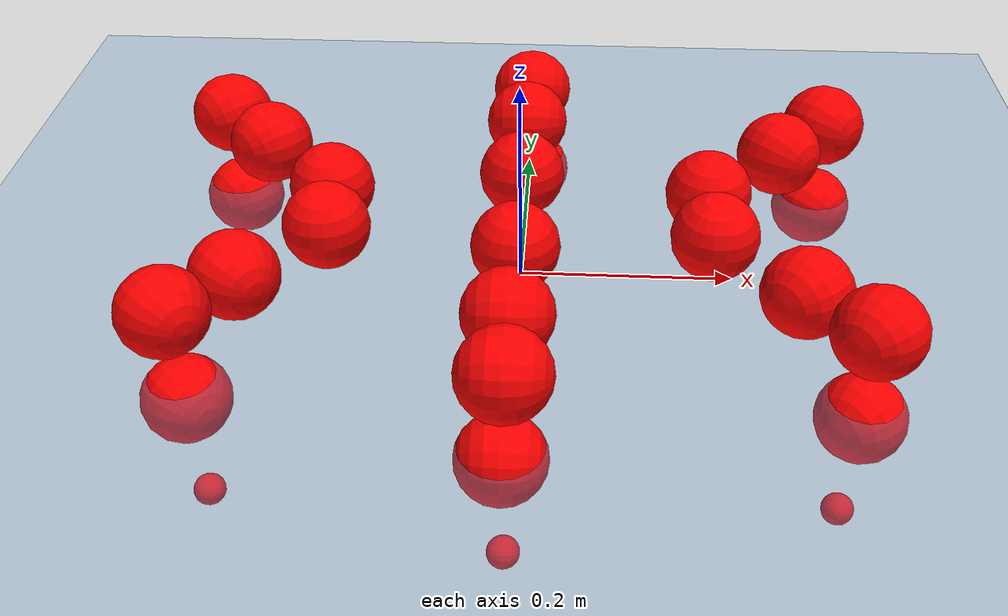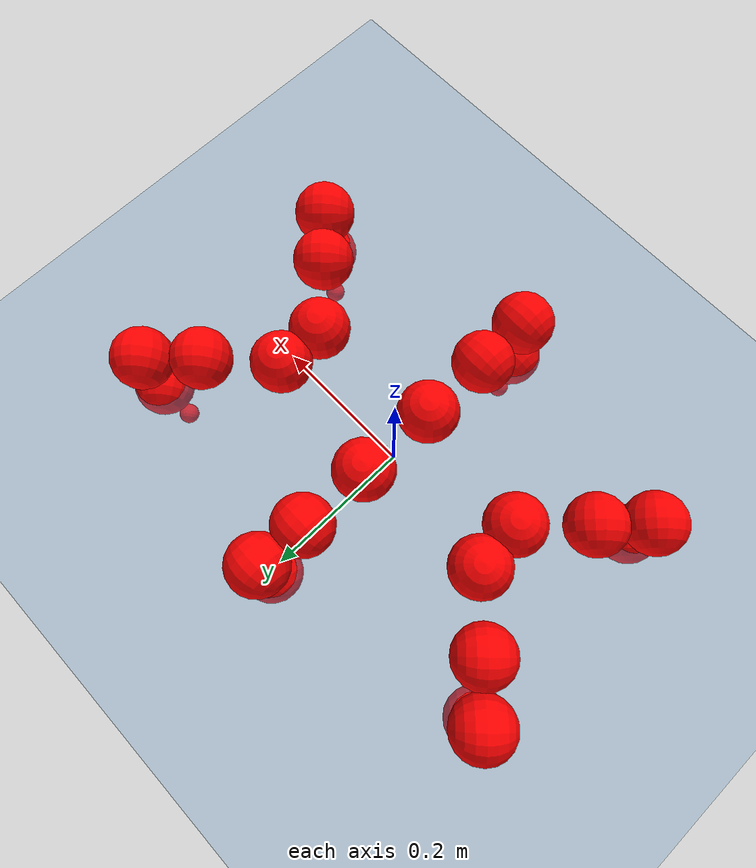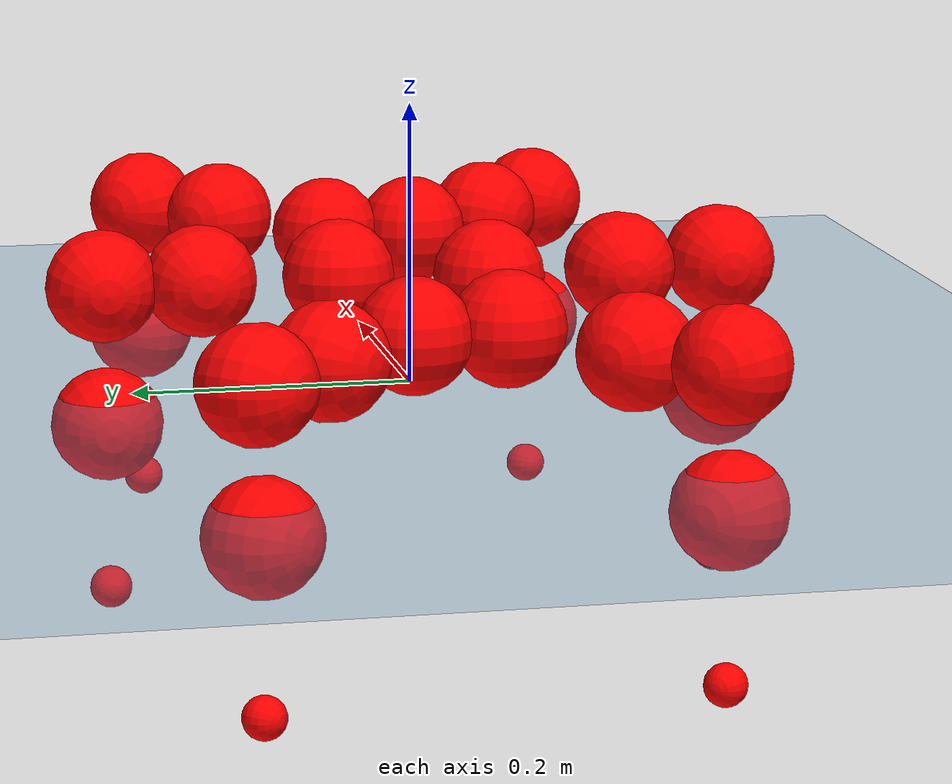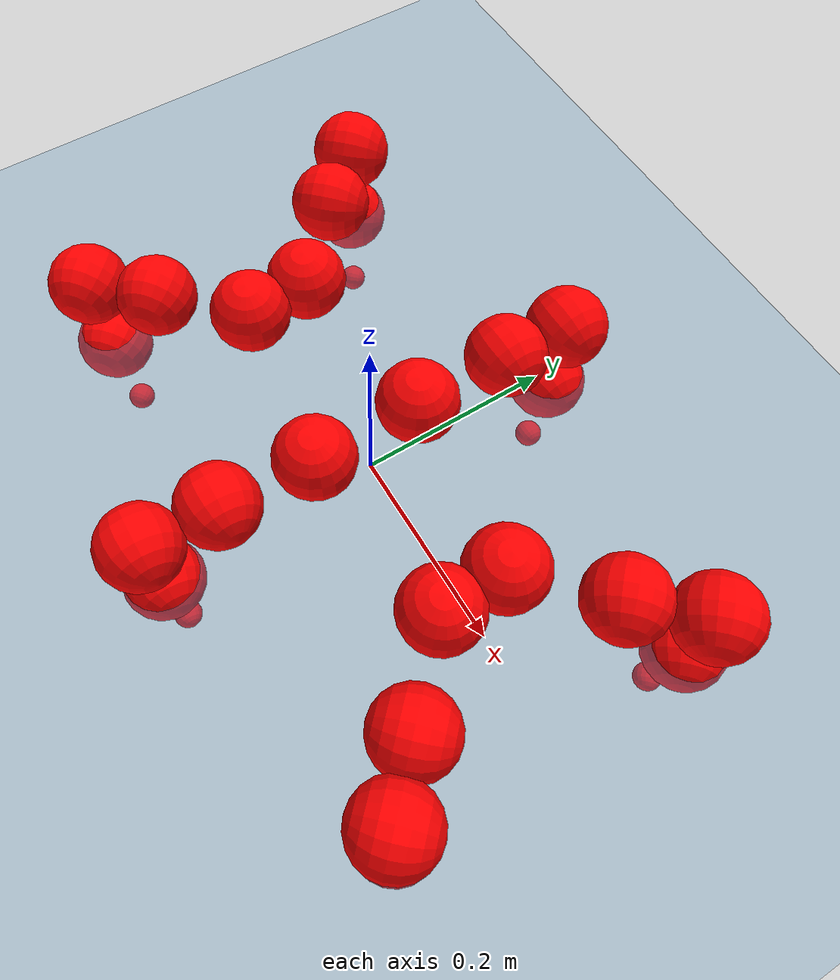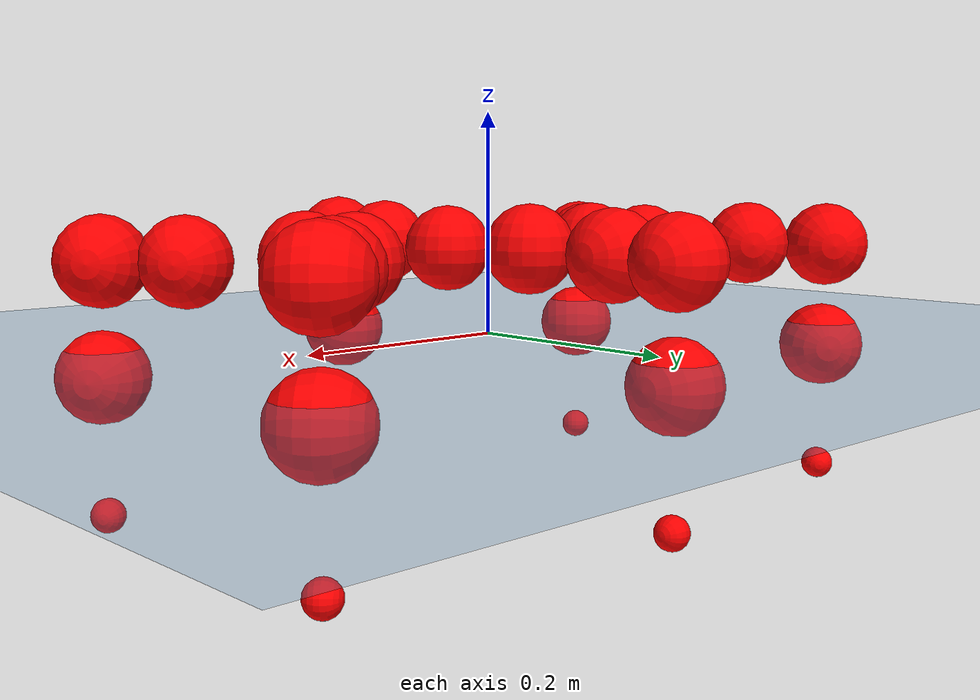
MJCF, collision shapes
<mujoco model="Golem">
  <compiler angle="radian" assetdir="assets" balanceinertia="true" inertiafromgeom="false"/>

  <option timestep="0.005" density="1.2" viscosity="2e-05"/>

  <size nkey="1"/>

  <visual>
    <quality shadowsize="8192"/>
    <map shadowclip="0.5"/>
  </visual>

  <default>
    <default class="/">
      <joint armature="0.01" damping="0.01" frictionloss="0.01"/>
      <geom contype="0" conaffinity="0" group="1" solref="-1000 -80"/>
      <site size="0.01 0.005 0.005" group="5"/>
      <general forcelimited="true" biastype="affine" gainprm="25" biasprm="0 -25 -0.5"/>
      <default class="visual">
        <geom type="mesh" group="2"/>
      </default>
      <default class="collision">
        <geom group="3"/>
      </default>
      <default class="foot">
        <geom size="0.01 0 0" condim="6" group="4" priority="1" solimp="0.015 1 0.01"/>
      </default>
      <default class="reward_collision_sphere">
        <geom group="5" rgba="1 0 0 1"/>
      </default>
    </default>
  </default>

  <asset>
    <texture type="skybox" colorspace="auto" name="//unnamed_texture_0" builtin="gradient" rgb1="0.95 0.95 0.95" rgb2="0.95 0.95 0.95" width="100" height="600"/>
    <texture type="2d" colorspace="auto" name="texplane" builtin="checker" rgb1="0.345 0.575 0.748" rgb2="0.345 0.575 0.748" markrgb="1 1 1" width="512" height="512"/>
    <material name="MatPlane" class="/" texture="texplane" texuniform="true" texrepeat="2 2" specular="0.9"/>
    <mesh name="body" class="/" file="body.stl" scale="0.001 0.001 0.001"/>
    <mesh name="coxa" class="/" file="coxa.stl" scale="0.001 0.001 0.001"/>
    <mesh name="femur" class="/" file="femur.stl" scale="0.001 0.001 0.001"/>
    <mesh name="tibia" class="/" file="tibia.stl" scale="0.001 0.001 0.001"/>
    <mesh name="tarsus" class="/" file="tarsus.stl" scale="0.001 0.001 0.001"/>
  </asset>

  <worldbody>
    <geom name="floor" class="/" size="100 100 0.125" type="plane" group="0" material="MatPlane"/>
    <light name="toplight_shadow" class="/" pos="0 0 5" dir="0.0990148 0.0990148 -0.990148" type="directional" ambient="0.04 0.04 0.04" diffuse="0.55 0.55 0.55" specular="0.12 0.12 0.12"/>
    <light name="toplight_fill" class="/" pos="0 0 5" dir="0.0990148 0.0990148 -0.990148" type="directional" castshadow="false" ambient="0.04 0.04 0.04" diffuse="0.3 0.3 0.3" specular="0.08 0.08 0.08"/>
    <body name="trunk" pos="-0.00228355 -0.00100492 -0.00153453" quat="1 2.29557e-06 -0.000126288 -4.71913e-06">
      <inertial pos="0.00298628 -0.00068223 -0.000104447" quat="0.999901 -0.0118033 0.00771134 -0.000270424" mass="3.76535" diaginertia="0.0165504 0.00142737 0.026099"/>
      <joint name="//unnamed_joint_0" type="free"/>
      <geom name="//unnamed_geom_1" class="/" pos="0 0 0.0773845" quat="1 0 0 0" type="mesh" rgba="0.9 0.9 0.9 1" mesh="body"/>
      <site name="imu" class="/" pos="0.139373 0.00521463 0.124332" size="0.00998426"/>
      <camera name="track" class="/" pos="0 -1.34884 0" quat="0.707107 0.707107 0 0" mode="trackcom"/>
      <camera name="ego_camera" class="/" pos="0.144524 0 0.120913" quat="-0.5 -0.5 0.5 0.5"/>
      <body name="coxa_RR" pos="-0.194879 -0.05522 0.0763746" quat="0.382633 7.40445e-05 -0.00022072 -0.9239">
        <inertial pos="-0.000518948 -0.00164392 -0.000547035" quat="1 -0.000591605 0.000232398 0.000333252" mass="0.198138" diaginertia="0.0162207 0.00142174 0.025967"/>
        <joint name="coxa_joint_RR" class="/" pos="0 0 0" axis="-0.000263347 0.00010695 -1" stiffness="0.00841507" range="-3.13675 3.08244" armature="0.00865106" damping="0.0033725" frictionloss="0.00951975"/>
        <geom name="//unnamed_geom_2" class="/" type="mesh" rgba="0.2 0.2 0.2 1" mesh="coxa"/>
        <geom name="//unnamed_geom_3" class="reward_collision_sphere" size="0.0399371" pos="-0.0333518 0 0"/>
        <body name="femur_RR" pos="0.0640354 0.0025137 -0.00391551" quat="0.500029 -0.499992 0.499986 0.499992">
          <inertial pos="-0.000209956 0.00241402 -0.0026314" quat="0.999997 0.00249168 0.000252903 3.74629e-05" mass="0.20136" diaginertia="0.0171833 0.00141885 0.0262774"/>
          <joint name="femur_joint_RR" class="/" pos="0 0 0" axis="0.00234688 0.00203021 -0.999995" range="-3.13171 3.09767" armature="0.0085913" damping="0.00840835" frictionloss="0.0113986"/>
          <geom name="//unnamed_geom_4" class="/" type="mesh" rgba="0.9 0.9 0.9 1" mesh="femur"/>
          <geom name="//unnamed_geom_5" class="reward_collision_sphere" size="0.0399371"/>
          <body name="tibia_RR" pos="9.67395e-05 -0.0701479 0.00320727" quat="0.000128606 0.999999 0.000563249 -0.000981235">
            <inertial pos="-0.00237094 -0.00251816 -6.58908e-05" quat="0.999903 0.0105693 0.00794434 0.00426606" mass="0.199518" diaginertia="0.0164832 0.0014205 0.0262553"/>
            <joint name="tibia_joint_RR" class="/" pos="0 0 0" axis="0.00808414 0.0079423 0.999936" stiffness="0.00833299" range="-3.17484 3.10112" armature="0.00870906" damping="0" frictionloss="0.0094655"/>
            <geom name="//unnamed_geom_6" class="/" type="mesh" rgba="0.2 0.2 0.2 1" mesh="tibia"/>
            <geom name="//unnamed_geom_7" class="reward_collision_sphere" size="0.0399371"/>
            <body name="tarsus_RR" pos="0.098007 -0.00127694 -0.00248985" quat="1 -5.45412e-05 1.95566e-05 0.000213246">
              <inertial pos="0.0663083 0.00243172 -0.00267569" quat="0.503374 0.50173 0.501932 0.492895" mass="0.198494" diaginertia="0.0168905 0.00143007 0.025678"/>
              <joint name="tarsus_joint_RR" class="/" pos="0 0 0" axis="-6.94064e-05 -0.000119316 1" range="-3.15796 3.13311" armature="0.011517" damping="0.00472936" frictionloss="0.0113388"/>
              <geom name="//unnamed_geom_8" class="/" type="mesh" rgba="0.9 0.9 0.9 1" mesh="tarsus"/>
              <geom name="foot_1" class="foot" size="0.00878744" pos="0.124513 0 0" quat="0 -0.707107 0 0.707107"/>
              <geom name="//unnamed_geom_10" class="reward_collision_sphere" size="0.0399371"/>
              <geom name="//unnamed_geom_11" class="reward_collision_sphere" size="0.0149764" pos="0.11951 0 0"/>
              <site name="foot_1" class="foot" pos="0.124513 0 0" quat="0 -0.707107 0 0.707107" size="0.00998426"/>
            </body>
          </body>
        </body>
      </body>
      <body name="coxa_RM" pos="0.000739933 -0.0894487 0.0768677" quat="0.706847 -0.000458248 0.000251233 -0.707366">
        <inertial pos="-0.00232283 0.00015796 -0.00181752" quat="0.999992 -0.00265001 -0.00201705 0.00235608" mass="0.193221" diaginertia="0.016868 0.00135918 0.0252154"/>
        <joint name="coxa_joint_RM" class="/" pos="0 0 0" axis="-6.78028e-05 -0.000131616 -1" range="-3.16313 3.12841" armature="0.00919698" damping="0.0175308" frictionloss="0.00982573"/>
        <geom name="//unnamed_geom_12" class="/" type="mesh" rgba="0.2 0.2 0.2 1" mesh="coxa"/>
        <geom name="//unnamed_geom_13" class="reward_collision_sphere" size="0.0399371" pos="-0.0333518 0 0"/>
        <body name="femur_RM" pos="0.0623294 -0.00112998 0.00255779" quat="0.5 -0.499114 0.500639 0.500246">
          <inertial pos="0.00204028 -0.00215016 0.00170234" quat="0.999932 0.000133915 -0.00742103 -0.00903035" mass="0.205197" diaginertia="0.0175841 0.00139258 0.027055"/>
          <joint name="femur_joint_RM" class="/" pos="0 0 0" axis="0.00374799 0.00293075 -0.999989" range="-3.13702 3.12978" armature="0.00963179" damping="0.00598516" frictionloss="0.00906366"/>
          <geom name="//unnamed_geom_14" class="/" type="mesh" rgba="0.9 0.9 0.9 1" mesh="femur"/>
          <geom name="//unnamed_geom_15" class="reward_collision_sphere" size="0.0399371"/>
          <body name="tibia_RM" pos="-0.00243984 -0.0743082 0.00150135" quat="-0.000158801 1 -2.93066e-05 -0.000324073">
            <inertial pos="-0.00166523 0.000763424 -0.000757802" quat="1 -0.000295922 -2.08056e-05 -0.00026559" mass="0.203923" diaginertia="0.0172273 0.00142029 0.0272505"/>
            <joint name="tibia_joint_RM" class="/" pos="0 0 0" axis="-0.00389996 0.0125657 0.999913" range="-3.08346 3.12618" armature="0.011193" damping="0.00386428" frictionloss="0.00952956"/>
            <geom name="//unnamed_geom_16" class="/" type="mesh" rgba="0.2 0.2 0.2 1" mesh="tibia"/>
            <geom name="//unnamed_geom_17" class="reward_collision_sphere" size="0.0399371"/>
            <body name="tarsus_RM" pos="0.0962236 -0.00192416 0.00332224" quat="0.999999 -0.00102362 0.00059099 0.000772197">
              <inertial pos="0.0687143 0.00164054 0.00195726" quat="0.500497 0.501174 0.497747 0.500575" mass="0.189233" diaginertia="0.0162791 0.00134524 0.0241786"/>
              <joint name="tarsus_joint_RM" class="/" pos="0 0 0" axis="-0.013674 -0.00228703 0.999904" range="-3.13785 3.14257" armature="0.011338" damping="0.00796778" frictionloss="0.00987575"/>
              <geom name="//unnamed_geom_18" class="/" type="mesh" rgba="0.9 0.9 0.9 1" mesh="tarsus"/>
              <geom name="foot_2" class="foot" size="0.0106985" pos="0.124513 0 0" quat="0 -0.707107 0 0.707107"/>
              <geom name="//unnamed_geom_20" class="reward_collision_sphere" size="0.0399371"/>
              <geom name="//unnamed_geom_21" class="reward_collision_sphere" size="0.0149764" pos="0.11951 0 0"/>
              <site name="foot_2" class="foot" pos="0.124513 0 0" quat="0 -0.707107 0 0.707107" size="0.00998426"/>
            </body>
          </body>
        </body>
      </body>
      <body name="coxa_RF" pos="0.200913 -0.0584517 0.077268" quat="0.92337 9.85234e-05 -0.000377846 -0.383911">
        <inertial pos="-0.0022486 0.000242145 0.00265366" quat="0.999909 -0.0109323 -0.00201289 -0.00767311" mass="0.203559" diaginertia="0.0165227 0.00139631 0.0251415"/>
        <joint name="coxa_joint_RF" class="/" pos="0 0 0" axis="-0.00891253 -9.47443e-06 -0.99996" range="-3.19417 3.13481" armature="0.00852758" damping="0.0219216" frictionloss="0.0113846"/>
        <geom name="//unnamed_geom_22" class="/" type="mesh" rgba="0.2 0.2 0.2 1" mesh="coxa"/>
        <geom name="//unnamed_geom_23" class="reward_collision_sphere" size="0.0399371" pos="-0.0333518 0 0"/>
        <body name="femur_RF" pos="0.0673478 0.000386509 -0.00338276" quat="0.500477 -0.499138 0.499766 0.500617">
          <inertial pos="0.000994432 -0.00251145 -0.000818444" quat="0.99999 0.00408526 0.00180775 -0.000439411" mass="0.190508" diaginertia="0.0171469 0.00135886 0.0246593"/>
          <joint name="femur_joint_RF" class="/" pos="0 0 0" axis="-0.00129919 -0.00343088 -0.999993" range="-3.10226 3.10156" armature="0.00963963" damping="0" frictionloss="0.00939926"/>
          <geom name="//unnamed_geom_24" class="/" type="mesh" rgba="0.9 0.9 0.9 1" mesh="femur"/>
          <geom name="//unnamed_geom_25" class="reward_collision_sphere" size="0.0399371"/>
          <body name="tibia_RF" pos="-0.000623988 -0.0708617 0.00144968" quat="-2.68367e-06 1 1.26385e-05 -2.78352e-05">
            <inertial pos="-0.00170638 -4.64215e-05 0.000161742" quat="0.99999 -0.00270238 0.00107879 -0.00350145" mass="0.189523" diaginertia="0.0158276 0.00134583 0.0249972"/>
            <joint name="tibia_joint_RF" class="/" pos="0 0 0" axis="-0.0136898 0.00279771 0.999902" range="-3.0844 3.12195" armature="0.00981663" damping="0" frictionloss="0.0113516"/>
            <geom name="//unnamed_geom_26" class="/" type="mesh" rgba="0.2 0.2 0.2 1" mesh="tibia"/>
            <geom name="//unnamed_geom_27" class="reward_collision_sphere" size="0.0399371"/>
            <body name="tarsus_RF" pos="0.0979652 0.000734289 -0.00213278" quat="0.999999 3.66046e-05 0.000560249 -0.00128847">
              <inertial pos="0.0646802 -0.00277376 0.00066962" quat="0.497491 0.499766 0.499593 0.503134" mass="0.192903" diaginertia="0.0164582 0.00139999 0.0245889"/>
              <joint name="tarsus_joint_RF" class="/" pos="0 0 0" axis="0.0126089 -0.00558554 0.999905" range="-3.14947 3.14623" armature="0.00921228" damping="0" frictionloss="0.00877161"/>
              <geom name="//unnamed_geom_28" class="/" type="mesh" rgba="0.9 0.9 0.9 1" mesh="tarsus"/>
              <geom name="foot_3" class="foot" size="0.00987008" pos="0.124513 0 0" quat="0 -0.707107 0 0.707107"/>
              <geom name="//unnamed_geom_30" class="reward_collision_sphere" size="0.0399371"/>
              <geom name="//unnamed_geom_31" class="reward_collision_sphere" size="0.0149764" pos="0.11951 0 0"/>
              <site name="foot_3" class="foot" pos="0.124513 0 0" quat="0 -0.707107 0 0.707107" size="0.00998426"/>
            </body>
          </body>
        </body>
      </body>
      <body name="coxa_LR" pos="-0.201046 0.0573344 0.0757388" quat="0.382448 5.17899e-05 7.47927e-05 0.923977">
        <inertial pos="0.00202808 0.000334899 0.001219" quat="0.999965 0.00415085 0.00211372 0.00693538" mass="0.196261" diaginertia="0.017143 0.00144874 0.0258714"/>
        <joint name="coxa_joint_LR" class="/" pos="0 0 0" axis="-0.0142649 -0.0107496 -0.99984" stiffness="0.0180316" range="-3.13878 3.18556" armature="0.0113927" damping="0.00365036" frictionloss="0.0107821"/>
        <geom name="//unnamed_geom_32" class="/" type="mesh" rgba="0.2 0.2 0.2 1" mesh="coxa"/>
        <geom name="//unnamed_geom_33" class="reward_collision_sphere" size="0.0399371" pos="-0.0333518 0 0"/>
        <body name="femur_LR" pos="0.0673641 0.00230337 0.00231546" quat="0.498939 -0.499996 0.500667 0.500396">
          <inertial pos="-0.00237121 -0.00179379 0.00176142" quat="1 -0.000604662 -0.000469927 -0.000329515" mass="0.210307" diaginertia="0.0180883 0.00147988 0.0262251"/>
          <joint name="femur_joint_LR" class="/" pos="0 0 0" axis="-0.006531 -0.00521666 0.999965" range="-3.19682 3.08374" armature="0.0102968" damping="0" frictionloss="0.00873977"/>
          <geom name="//unnamed_geom_34" class="/" type="mesh" rgba="0.9 0.9 0.9 1" mesh="femur"/>
          <geom name="//unnamed_geom_35" class="reward_collision_sphere" size="0.0399371"/>
          <body name="tibia_LR" pos="0.000727094 -0.0762059 -0.00231317" quat="0.000196285 1 7.78543e-05 0.000644606">
            <inertial pos="-0.000164297 -0.0018288 0.00095475" quat="0.999919 0.00195755 2.40189e-05 0.0125802" mass="0.185435" diaginertia="0.0158131 0.00139067 0.0244579"/>
            <joint name="tibia_joint_LR" class="/" pos="0 0 0" axis="-0.00999057 -0.00277354 -0.999946" range="-3.1317 3.095" armature="0.00986268" damping="0.0042383" frictionloss="0.0114013"/>
            <geom name="//unnamed_geom_36" class="/" type="mesh" rgba="0.2 0.2 0.2 1" mesh="tibia"/>
            <geom name="//unnamed_geom_37" class="reward_collision_sphere" size="0.0399371"/>
            <body name="tarsus_LR" pos="0.0987521 -0.00145276 -0.00243931" quat="0.999999 0.000126003 -0.00142107 -5.81729e-06">
              <inertial pos="0.0639757 0.00279622 -0.00265422" quat="0.500672 0.496388 0.501529 0.501393" mass="0.193291" diaginertia="0.0170106 0.00145303 0.026132"/>
              <joint name="tarsus_joint_LR" class="/" pos="0 0 0" axis="0.00700777 0.00225577 -0.999973" range="-3.19633 3.15666" armature="0.00867044" damping="0.0283003" frictionloss="0.0103626"/>
              <geom name="//unnamed_geom_38" class="/" type="mesh" rgba="0.9 0.9 0.9 1" mesh="tarsus"/>
              <geom name="foot_4" class="foot" size="0.0101328" pos="0.124513 0 0" quat="0.707107 0 -0.707107 0"/>
              <geom name="//unnamed_geom_40" class="reward_collision_sphere" size="0.0399371"/>
              <geom name="//unnamed_geom_41" class="reward_collision_sphere" size="0.0149764" pos="0.11951 0 0"/>
              <site name="foot_4" class="foot" pos="0.124513 0 0" quat="0.707107 0 -0.707107 0" size="0.00998426"/>
            </body>
          </body>
        </body>
      </body>
      <body name="coxa_LM" pos="0.00112398 0.0862142 0.0811911" quat="0.707071 -6.20495e-05 0.000409391 0.707142">
        <inertial pos="0.00311936 0.00160563 0.00231708" quat="0.999917 0.00722798 -0.00148226 -0.010594" mass="0.195325" diaginertia="0.0177519 0.00137316 0.026448"/>
        <joint name="coxa_joint_LM" class="/" pos="0 0 0" axis="-0.00723393 0.005975 -0.999956" range="-3.09361 3.16321" armature="0.00995738" damping="0.00105861" frictionloss="0.00985987"/>
        <geom name="//unnamed_geom_42" class="/" type="mesh" rgba="0.2 0.2 0.2 1" mesh="coxa"/>
        <geom name="//unnamed_geom_43" class="reward_collision_sphere" size="0.0399371" pos="-0.0333518 0 0"/>
        <body name="femur_LM" pos="0.0647212 -0.000668143 -0.000443851" quat="0.499389 -0.499375 0.5006 0.500635">
          <inertial pos="0.0028172 0.000543809 -0.00284892" quat="1 0.000735672 8.61605e-05 -2.69381e-05" mass="0.210274" diaginertia="0.0175102 0.00143601 0.0276013"/>
          <joint name="femur_joint_LM" class="/" pos="0 0 0" axis="0.0129737 -0.00271023 0.999912" stiffness="0.00419863" range="-3.17878 3.09925" armature="0.0106548" damping="0.0136653" frictionloss="0.0114"/>
          <geom name="//unnamed_geom_44" class="/" type="mesh" rgba="0.9 0.9 0.9 1" mesh="femur"/>
          <geom name="//unnamed_geom_45" class="reward_collision_sphere" size="0.0399371"/>
          <body name="tibia_LM" pos="0.00113783 -0.0693084 -0.00230012" quat="0.000110234 1 0.000579204 -0.000252016">
            <inertial pos="0.00306209 0.00174338 -0.000547733" quat="0.999962 0.00539031 -0.00325734 0.00607822" mass="0.211219" diaginertia="0.0175453 0.00142111 0.0276641"/>
            <joint name="tibia_joint_LM" class="/" pos="0 0 0" axis="-0.0132922 -0.00513197 -0.999898" range="-3.12728 3.14642" armature="0.00887021" damping="0" frictionloss="0.010199"/>
            <geom name="//unnamed_geom_46" class="/" type="mesh" rgba="0.2 0.2 0.2 1" mesh="tibia"/>
            <geom name="//unnamed_geom_47" class="reward_collision_sphere" size="0.0399371"/>
            <body name="tarsus_LM" pos="0.0990247 -0.00142938 -0.000449356" quat="1 -5.34846e-05 0.000192367 -1.68233e-05">
              <inertial pos="0.0670408 0.000737579 0.00261363" quat="0.489556 0.500999 0.503567 0.505723" mass="0.192814" diaginertia="0.0166567 0.00143751 0.0256385"/>
              <joint name="tarsus_joint_LM" class="/" pos="0 0 0" axis="0.00381157 0.00769811 -0.999963" range="-3.16899 3.12263" armature="0.0103529" damping="0.0185136" frictionloss="0.0100121"/>
              <geom name="//unnamed_geom_48" class="/" type="mesh" rgba="0.9 0.9 0.9 1" mesh="tarsus"/>
              <geom name="foot_5" class="foot" size="0.00967653" pos="0.124513 0 0" quat="0.707107 0 -0.707107 0"/>
              <geom name="//unnamed_geom_50" class="reward_collision_sphere" size="0.0399371"/>
              <geom name="//unnamed_geom_51" class="reward_collision_sphere" size="0.0149764" pos="0.11951 0 0"/>
              <site name="foot_5" class="foot" pos="0.124513 0 0" quat="0.707107 0 -0.707107 0" size="0.00998426"/>
            </body>
          </body>
        </body>
      </body>
      <body name="coxa_LF" pos="0.199792 0.0549022 0.0785755" quat="0.924073 -0.00011003 -0.000746979 0.382214">
        <inertial pos="-0.00066043 0.000441055 0.00275635" quat="0.999992 -0.00248489 -0.00325877 -8.0212e-05" mass="0.195192" diaginertia="0.0171376 0.00135042 0.0252011"/>
        <joint name="coxa_joint_LF" class="/" pos="0 0 0" axis="-0.0101948 0.00981068 -0.9999" range="-3.14417 3.1198" armature="0.00956805" damping="0.027601" frictionloss="0.0087025"/>
        <geom name="//unnamed_geom_52" class="/" type="mesh" rgba="0.2 0.2 0.2 1" mesh="coxa"/>
        <geom name="//unnamed_geom_53" class="reward_collision_sphere" size="0.0399371" pos="-0.0333518 0 0"/>
        <body name="femur_LF" pos="0.0679432 -0.00209623 0.00103242" quat="0.499862 -0.500111 0.50076 0.499265">
          <inertial pos="0.000530008 -0.000509428 0.00198572" quat="0.999899 0.00268364 0.0054729 0.0128033" mass="0.201344" diaginertia="0.0164714 0.00139007 0.0259637"/>
          <joint name="femur_joint_LF" class="/" pos="0 0 0" axis="0.0119656 -0.00970486 0.999881" range="-3.15827 3.14471" armature="0.00980638" damping="0.00137309" frictionloss="0.0111266"/>
          <geom name="//unnamed_geom_54" class="/" type="mesh" rgba="0.9 0.9 0.9 1" mesh="femur"/>
          <geom name="//unnamed_geom_55" class="reward_collision_sphere" size="0.0399371"/>
          <body name="tibia_LF" pos="-0.00133573 -0.0736516 0.00213268" quat="0.000401408 1 0.00057658 -0.000302578">
            <inertial pos="-4.9994e-06 -0.00119129 -0.00219264" quat="0.999962 0.00496985 -0.00216277 0.0068377" mass="0.204919" diaginertia="0.0178571 0.00139027 0.0257909"/>
            <joint name="tibia_joint_LF" class="/" pos="0 0 0" axis="-0.00215145 -4.17182e-05 -0.999998" range="-3.12393 3.1847" armature="0.0103457" damping="0.0122449" frictionloss="0.00999317"/>
            <geom name="//unnamed_geom_56" class="/" type="mesh" rgba="0.2 0.2 0.2 1" mesh="tibia"/>
            <geom name="//unnamed_geom_57" class="reward_collision_sphere" size="0.0399371"/>
            <body name="tarsus_LF" pos="0.0988835 0.00308127 -0.000206012" quat="0.999999 -0.00107367 0.000695442 -4.58635e-05">
              <inertial pos="0.0655255 -0.000936773 -6.67683e-05" quat="0.499127 0.499294 0.500918 0.500659" mass="0.185846" diaginertia="0.0158944 0.00130158 0.0254018"/>
              <joint name="tarsus_joint_LF" class="/" pos="0 0 0" axis="0.0034392 0.011778 -0.999925" range="-3.15138 3.08738" armature="0.0111776" damping="0.0263435" frictionloss="0.0105021"/>
              <geom name="//unnamed_geom_58" class="/" type="mesh" rgba="0.9 0.9 0.9 1" mesh="tarsus"/>
              <geom name="foot_6" class="foot" size="0.0103555" pos="0.124513 0 0" quat="0.707107 0 -0.707107 0"/>
              <geom name="//unnamed_geom_60" class="reward_collision_sphere" size="0.0399371"/>
              <geom name="//unnamed_geom_61" class="reward_collision_sphere" size="0.0149764" pos="0.11951 0 0"/>
              <site name="foot_6" class="foot" pos="0.124513 0 0" quat="0.707107 0 -0.707107 0" size="0.00998426"/>
            </body>
          </body>
        </body>
      </body>
    </body>
  </worldbody>

  <contact>
    <pair class="/" geom1="floor" geom2="foot_1" name="//unnamed_contact_0"/>
    <pair class="/" geom1="floor" geom2="foot_2" name="//unnamed_contact_1"/>
    <pair class="/" geom1="floor" geom2="foot_3" name="//unnamed_contact_2"/>
    <pair class="/" geom1="floor" geom2="foot_4" name="//unnamed_contact_3"/>
    <pair class="/" geom1="floor" geom2="foot_5" name="//unnamed_contact_4"/>
    <pair class="/" geom1="floor" geom2="foot_6" name="//unnamed_contact_5"/>
  </contact>

  <actuator>
    <general name="coxa_joint_RR" class="/" joint="coxa_joint_RR" forcerange="-8.05843 8.05843" gainprm="23.636" biasprm="0 -23.636 -0.51839"/>
    <general name="femur_joint_RR" class="/" joint="femur_joint_RR" forcerange="-8.05214 8.05214" gainprm="23.636" biasprm="0 -23.636 -0.51839"/>
    <general name="tibia_joint_RR" class="/" joint="tibia_joint_RR" forcerange="-6.54268 6.54268" gainprm="23.636" biasprm="0 -23.636 -0.51839"/>
    <general name="tarsus_joint_RR" class="/" joint="tarsus_joint_RR" forcerange="-6.58726 6.58726" gainprm="23.636" biasprm="0 -23.636 -0.51839"/>
    <general name="coxa_joint_RM" class="/" joint="coxa_joint_RM" forcerange="-6.75556 6.75556" gainprm="23.636" biasprm="0 -23.636 -0.51839"/>
    <general name="femur_joint_RM" class="/" joint="femur_joint_RM" forcerange="-7.19751 7.19751" gainprm="23.636" biasprm="0 -23.636 -0.51839"/>
    <general name="tibia_joint_RM" class="/" joint="tibia_joint_RM" forcerange="-7.22767 7.22767" gainprm="23.636" biasprm="0 -23.636 -0.51839"/>
    <general name="tarsus_joint_RM" class="/" joint="tarsus_joint_RM" forcerange="-7.52158 7.52158" gainprm="23.636" biasprm="0 -23.636 -0.51839"/>
    <general name="coxa_joint_RF" class="/" joint="coxa_joint_RF" forcerange="-7.0046 7.0046" gainprm="23.636" biasprm="0 -23.636 -0.51839"/>
    <general name="femur_joint_RF" class="/" joint="femur_joint_RF" forcerange="-7.52993 7.52993" gainprm="23.636" biasprm="0 -23.636 -0.51839"/>
    <general name="tibia_joint_RF" class="/" joint="tibia_joint_RF" forcerange="-7.78207 7.78207" gainprm="23.636" biasprm="0 -23.636 -0.51839"/>
    <general name="tarsus_joint_RF" class="/" joint="tarsus_joint_RF" forcerange="-7.87599 7.87599" gainprm="23.636" biasprm="0 -23.636 -0.51839"/>
    <general name="coxa_joint_LR" class="/" joint="coxa_joint_LR" forcerange="-7.26464 7.26464" gainprm="23.636" biasprm="0 -23.636 -0.51839"/>
    <general name="femur_joint_LR" class="/" joint="femur_joint_LR" forcerange="-7.31991 7.31991" gainprm="23.636" biasprm="0 -23.636 -0.51839"/>
    <general name="tibia_joint_LR" class="/" joint="tibia_joint_LR" forcerange="-7.59558 7.59558" gainprm="23.636" biasprm="0 -23.636 -0.51839"/>
    <general name="tarsus_joint_LR" class="/" joint="tarsus_joint_LR" forcerange="-7.78145 7.78145" gainprm="23.636" biasprm="0 -23.636 -0.51839"/>
    <general name="coxa_joint_LM" class="/" joint="coxa_joint_LM" forcerange="-7.0412 7.0412" gainprm="23.636" biasprm="0 -23.636 -0.51839"/>
    <general name="femur_joint_LM" class="/" joint="femur_joint_LM" forcerange="-7.55531 7.55531" gainprm="23.636" biasprm="0 -23.636 -0.51839"/>
    <general name="tibia_joint_LM" class="/" joint="tibia_joint_LM" forcerange="-7.33883 7.33883" gainprm="23.636" biasprm="0 -23.636 -0.51839"/>
    <general name="tarsus_joint_LM" class="/" joint="tarsus_joint_LM" forcerange="-6.76288 6.76288" gainprm="23.636" biasprm="0 -23.636 -0.51839"/>
    <general name="coxa_joint_LF" class="/" joint="coxa_joint_LF" forcerange="-7.19483 7.19483" gainprm="23.636" biasprm="0 -23.636 -0.51839"/>
    <general name="femur_joint_LF" class="/" joint="femur_joint_LF" forcerange="-7.9058 7.9058" gainprm="23.636" biasprm="0 -23.636 -0.51839"/>
    <general name="tibia_joint_LF" class="/" joint="tibia_joint_LF" forcerange="-7.97306 7.97306" gainprm="23.636" biasprm="0 -23.636 -0.51839"/>
    <general name="tarsus_joint_LF" class="/" joint="tarsus_joint_LF" forcerange="-7.01161 7.01161" gainprm="23.636" biasprm="0 -23.636 -0.51839"/>
  </actuator>

  <sensor>
    <gyro site="imu" name="imu_angular_velocity"/>
    <velocimeter site="imu" name="imu_linear_velocity"/>
    <framelinvel objtype="site" objname="foot_1" name="foot_1_global_linear_velocity"/>
    <framelinvel objtype="site" objname="foot_2" name="foot_2_global_linear_velocity"/>
    <framelinvel objtype="site" objname="foot_3" name="foot_3_global_linear_velocity"/>
    <framelinvel objtype="site" objname="foot_4" name="foot_4_global_linear_velocity"/>
    <framelinvel objtype="site" objname="foot_5" name="foot_5_global_linear_velocity"/>
    <framelinvel objtype="site" objname="foot_6" name="foot_6_global_linear_velocity"/>
  </sensor>

  <keyframe>
    <key name="home" qpos="0 0 0.1457 1 0 0 0 0 0 0 0 0 0 0 0 0 0 0 0 0 0 0 0 0 0 0 0 0 0 0 0"/>
  </keyframe>
</mujoco>
